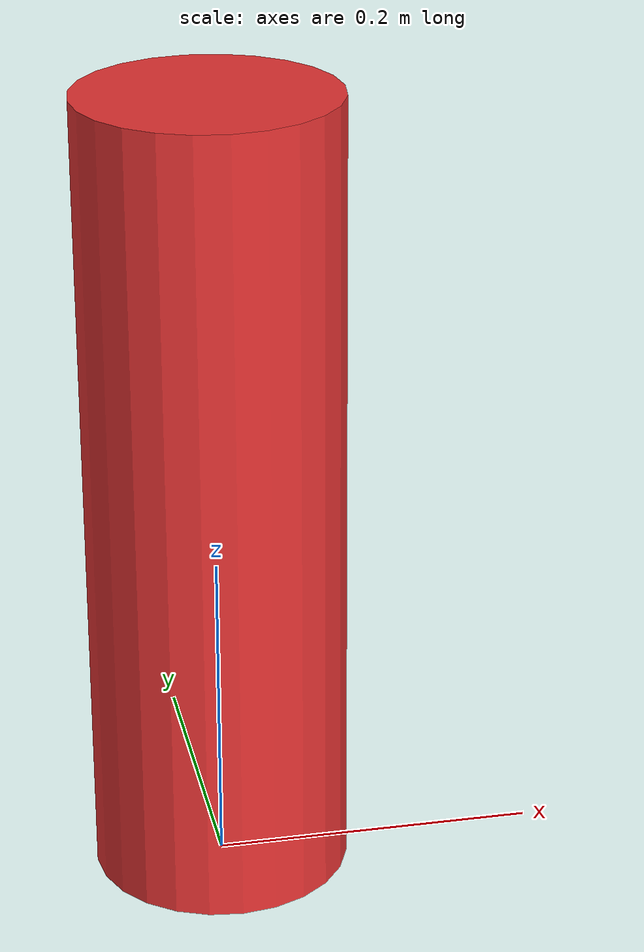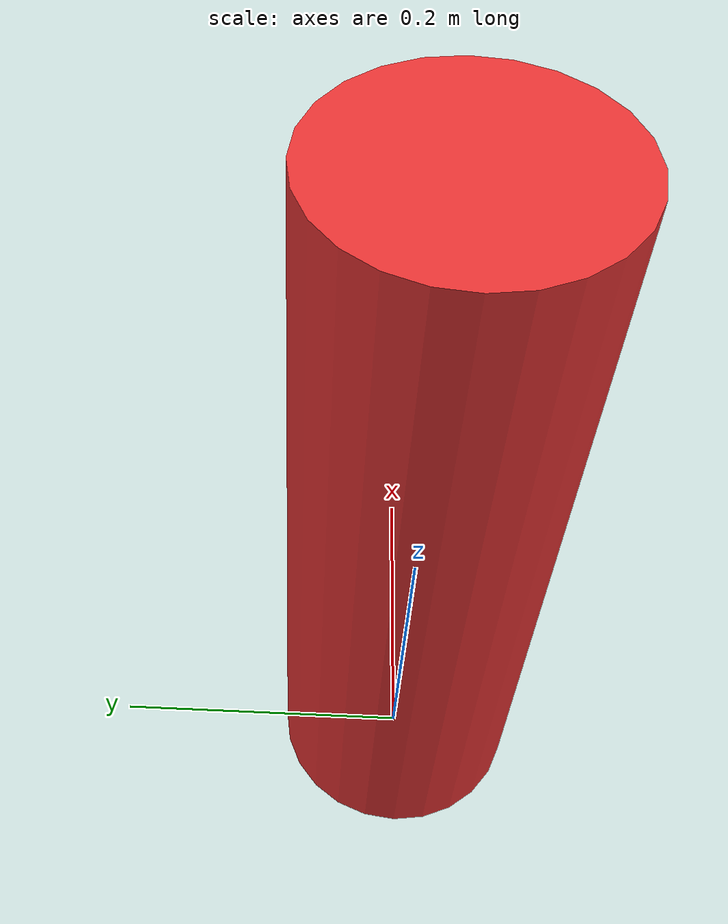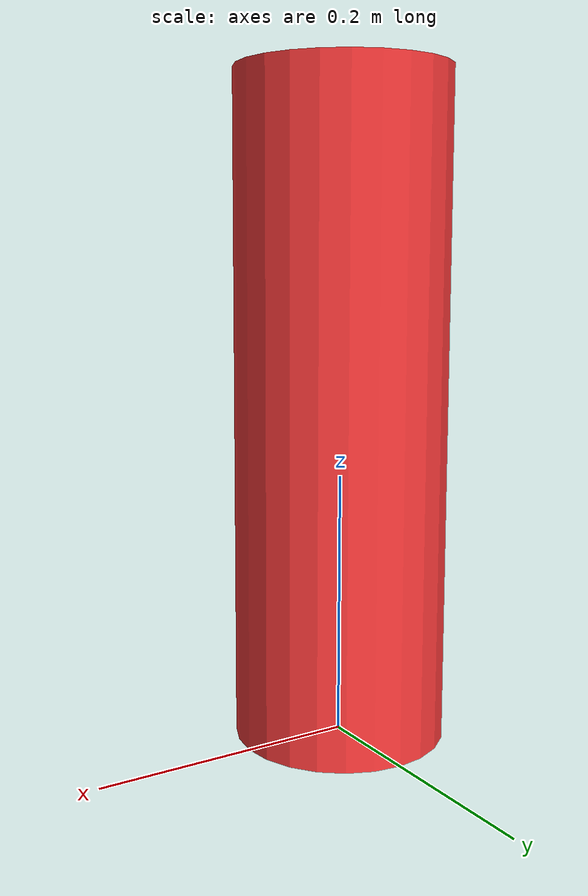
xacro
<?xml version="1.0"?>
<robot xmlns:xacro="http://wiki.ros.org/xacro">

    <!-- 障碍物：单个圆柱，放在路径侧面形成瓶颈 -->
    <link name="obstacle_cylinder_1">
        <visual>
            <geometry>
                <cylinder radius="0.08" length="0.5"/>
            </geometry>
            <material name="obstacle_red">
                <color rgba="0.9 0.2 0.2 1.0"/>
            </material>
            <origin xyz="0 0 0.25" rpy="0 0 0"/>
        </visual>
        <collision>
            <geometry>
                <cylinder radius="0.08" length="0.5"/>
            </geometry>
            <origin xyz="0 0 0.25" rpy="0 0 0"/>
        </collision>
        <inertial>
            <mass value="1.0"/>
            <inertia ixx="0.01" ixy="0.0" ixz="0.0" iyy="0.01" iyz="0.0" izz="0.01"/>
        </inertial>
    </link>

</robot>
